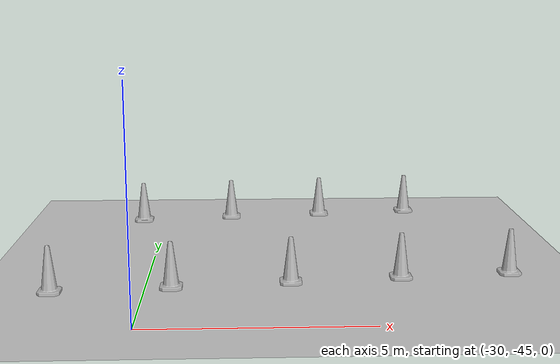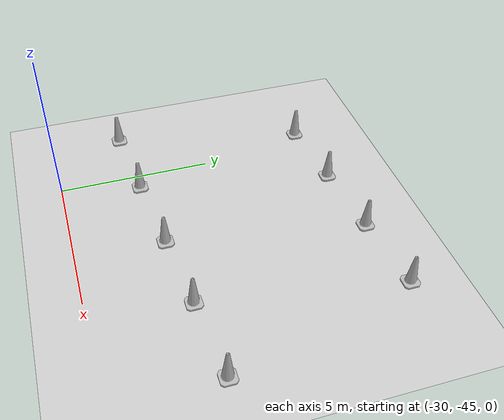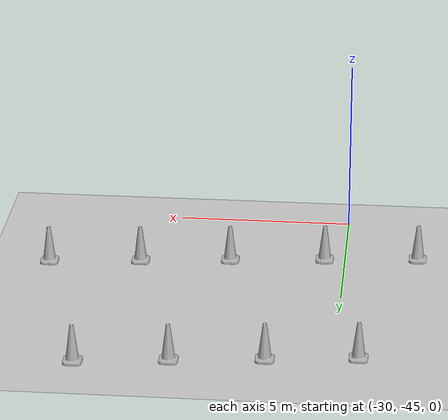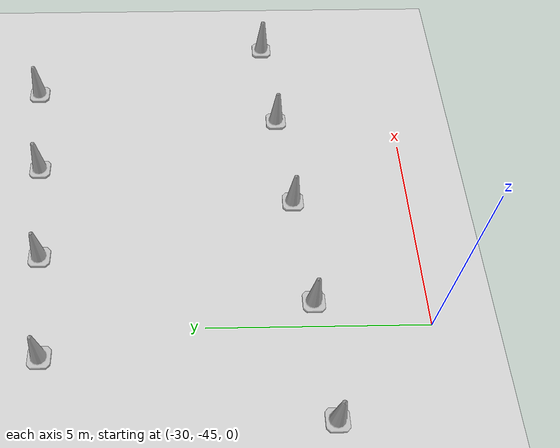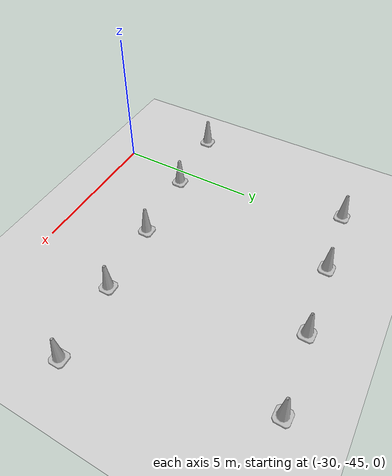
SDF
<sdf version="1.7">
 <world name="default">
  <model name="ground_plane">
   <static>1</static>
   <link name="link">
    <collision name="collision">
     <geometry><plane><normal>0 0 1</normal><size>125 125</size></plane></geometry>
     <surface>
      <contact><collide_bitmask>65535</collide_bitmask></contact>
      <friction><ode><mu>100</mu><mu2>50</mu2></ode></friction>
     </surface>
    </collision>
    <visual name="visual">
     <cast_shadows>0</cast_shadows>
     <geometry><plane><normal>0 0 1</normal><size>125 125</size></plane></geometry>
     <material>
      <script><uri>file://media/materials/scripts/gazebo.material</uri><name>Gazebo/Grey</name></script>
     </material>
    </visual>
   </link>
  </model>
  <model name="Construction Cone 316">
   <link name="link">
    <collision name="collision">
     <geometry>
      <mesh><scale>10 10 10</scale><uri>model://construction_cone/meshes/construction_cone.dae</uri></mesh>
     </geometry>
    </collision>
    <visual name="visual">
     <geometry>
      <mesh><scale>10 10 10</scale><uri>model://construction_cone/meshes/construction_cone.dae</uri></mesh>
     </geometry>
    </visual>
    <inertial>
     <inertia><ixx>1</ixx><ixy>0</ixy><ixz>0</ixz><iyy>1</iyy><iyz>0</iyz><izz>1</izz></inertia>
     <mass>1</mass>
    </inertial>
   </link>
   <pose>-23.06882304738017 -35.59392988662967 0 0 0 0</pose>
  </model>
  <model name="Construction Cone 319">
   <link name="link">
    <collision name="collision">
     <geometry>
      <mesh><scale>10 10 10</scale><uri>model://construction_cone/meshes/construction_cone.dae</uri></mesh>
     </geometry>
    </collision>
    <visual name="visual">
     <geometry>
      <mesh><scale>10 10 10</scale><uri>model://construction_cone/meshes/construction_cone.dae</uri></mesh>
     </geometry>
    </visual>
    <inertial>
     <inertia><ixx>1</ixx><ixy>0</ixy><ixz>0</ixz><iyy>1</iyy><iyz>0</iyz><izz>1</izz></inertia>
     <mass>1</mass>
    </inertial>
   </link>
   <pose>-25.606501618808743 -35.87839417234396 0 0 0 0</pose>
  </model>
  <model name="Construction Cone 322">
   <link name="link">
    <collision name="collision">
     <geometry>
      <mesh><scale>10 10 10</scale><uri>model://construction_cone/meshes/construction_cone.dae</uri></mesh>
     </geometry>
    </collision>
    <visual name="visual">
     <geometry>
      <mesh><scale>10 10 10</scale><uri>model://construction_cone/meshes/construction_cone.dae</uri></mesh>
     </geometry>
    </visual>
    <inertial>
     <inertia><ixx>1</ixx><ixy>0</ixy><ixz>0</ixz><iyy>1</iyy><iyz>0</iyz><izz>1</izz></inertia>
     <mass>1</mass>
    </inertial>
   </link>
   <pose>-28.16025161880874 -36.14357274377252 0 0 0 0</pose>
  </model>
  <model name="Construction Cone 324">
   <link name="link">
    <collision name="collision">
     <geometry>
      <mesh><scale>10 10 10</scale><uri>model://construction_cone/meshes/construction_cone.dae</uri></mesh>
     </geometry>
    </collision>
    <visual name="visual">
     <geometry>
      <mesh><scale>10 10 10</scale><uri>model://construction_cone/meshes/construction_cone.dae</uri></mesh>
     </geometry>
    </visual>
    <inertial>
     <inertia><ixx>1</ixx><ixy>0</ixy><ixz>0</ixz><iyy>1</iyy><iyz>0</iyz><izz>1</izz></inertia>
     <mass>1</mass>
    </inertial>
   </link>
   <pose>-30.648751618808742 -36.41614417234396 0 0 0 0</pose>
  </model>
  <model name="Construction Cone 350">
   <link name="link">
    <collision name="collision">
     <geometry>
      <mesh><scale>10 10 10</scale><uri>model://construction_cone/meshes/construction_cone.dae</uri></mesh>
     </geometry>
    </collision>
    <visual name="visual">
     <geometry>
      <mesh><scale>10 10 10</scale><uri>model://construction_cone/meshes/construction_cone.dae</uri></mesh>
     </geometry>
    </visual>
    <inertial>
     <inertia><ixx>1</ixx><ixy>0</ixy><ixz>0</ixz><iyy>1</iyy><iyz>0</iyz><izz>1</izz></inertia>
     <mass>1</mass>
    </inertial>
   </link>
   <pose>-21.489001618808736 -41.67214417234395 0 0 0 0</pose>
  </model>
  <model name="Construction Cone 351">
   <link name="link">
    <collision name="collision">
     <geometry>
      <mesh><scale>10 10 10</scale><uri>model://construction_cone/meshes/construction_cone.dae</uri></mesh>
     </geometry>
    </collision>
    <visual name="visual">
     <geometry>
      <mesh><scale>10 10 10</scale><uri>model://construction_cone/meshes/construction_cone.dae</uri></mesh>
     </geometry>
    </visual>
    <inertial>
     <inertia><ixx>1</ixx><ixy>0</ixy><ixz>0</ixz><iyy>1</iyy><iyz>0</iyz><izz>1</izz></inertia>
     <mass>1</mass>
    </inertial>
   </link>
   <pose>-24.11025161880874 -41.91964417234395 0 0 0 0</pose>
  </model>
  <model name="Construction Cone 353">
   <link name="link">
    <collision name="collision">
     <geometry>
      <mesh><scale>10 10 10</scale><uri>model://construction_cone/meshes/construction_cone.dae</uri></mesh>
     </geometry>
    </collision>
    <visual name="visual">
     <geometry>
      <mesh><scale>10 10 10</scale><uri>model://construction_cone/meshes/construction_cone.dae</uri></mesh>
     </geometry>
    </visual>
    <inertial>
     <inertia><ixx>1</ixx><ixy>0</ixy><ixz>0</ixz><iyy>1</iyy><iyz>0</iyz><izz>1</izz></inertia>
     <mass>1</mass>
    </inertial>
   </link>
   <pose>-26.690828541885665 -42.174067249267026 0 0 0 0</pose>
  </model>
  <model name="Construction Cone 354">
   <link name="link">
    <collision name="collision">
     <geometry>
      <mesh><scale>10 10 10</scale><uri>model://construction_cone/meshes/construction_cone.dae</uri></mesh>
     </geometry>
    </collision>
    <visual name="visual">
     <geometry>
      <mesh><scale>10 10 10</scale><uri>model://construction_cone/meshes/construction_cone.dae</uri></mesh>
     </geometry>
    </visual>
    <inertial>
     <inertia><ixx>1</ixx><ixy>0</ixy><ixz>0</ixz><iyy>1</iyy><iyz>0</iyz><izz>1</izz></inertia>
     <mass>1</mass>
    </inertial>
   </link>
   <pose>-29.41275161880874 -42.43714417234396 0 0 0 0</pose>
  </model>
  <model name="Construction Cone 356">
   <link name="link">
    <collision name="collision">
     <geometry>
      <mesh><scale>10 10 10</scale><uri>model://construction_cone/meshes/construction_cone.dae</uri></mesh>
     </geometry>
    </collision>
    <visual name="visual">
     <geometry>
      <mesh><scale>10 10 10</scale><uri>model://construction_cone/meshes/construction_cone.dae</uri></mesh>
     </geometry>
    </visual>
    <inertial>
     <inertia><ixx>1</ixx><ixy>0</ixy><ixz>0</ixz><iyy>1</iyy><iyz>0</iyz><izz>1</izz></inertia>
     <mass>1</mass>
    </inertial>
   </link>
   <pose>-32.09775161880874 -42.67714417234396 0 0 0 0</pose>
  </model>
 </world>
</sdf>
